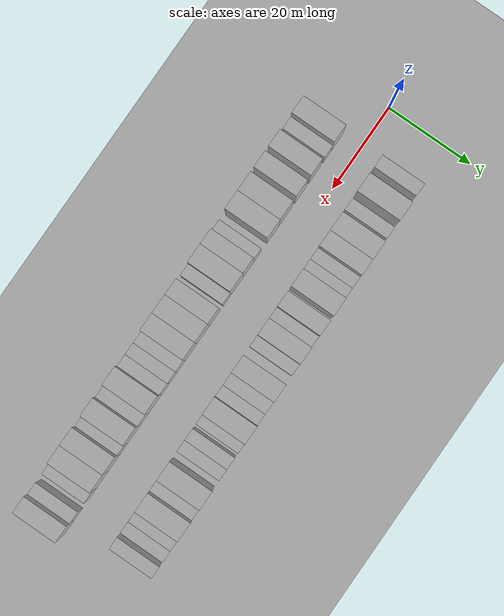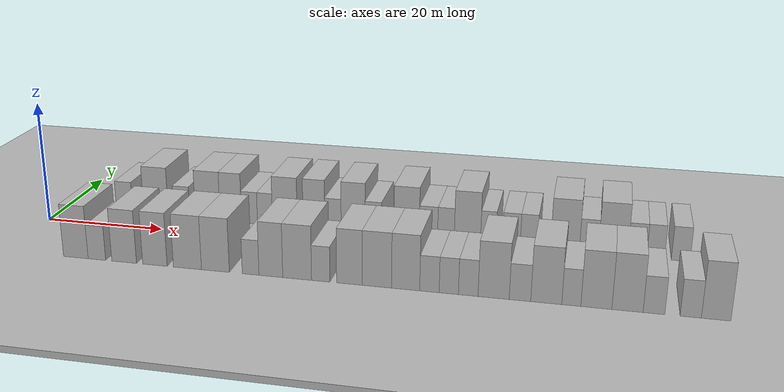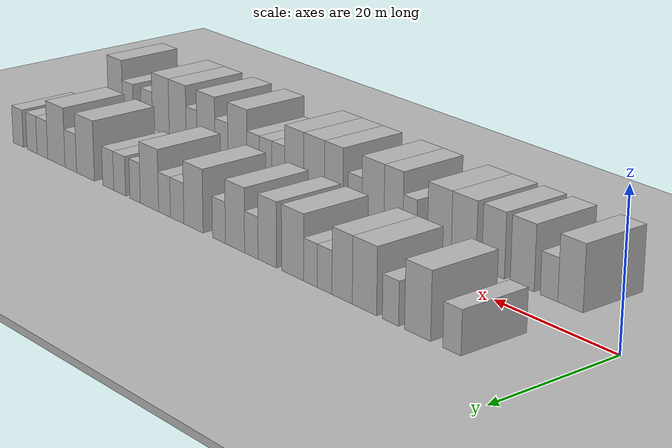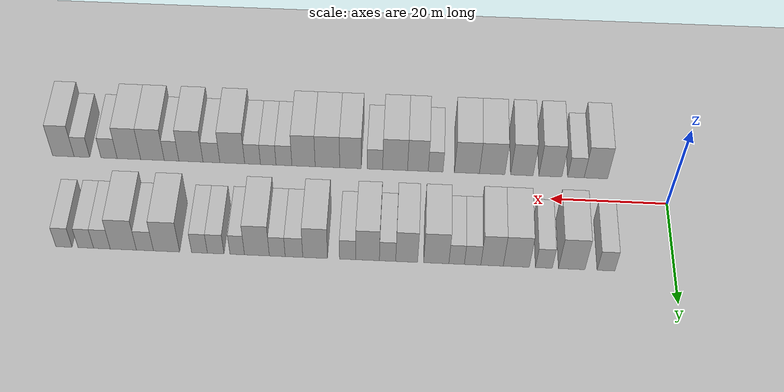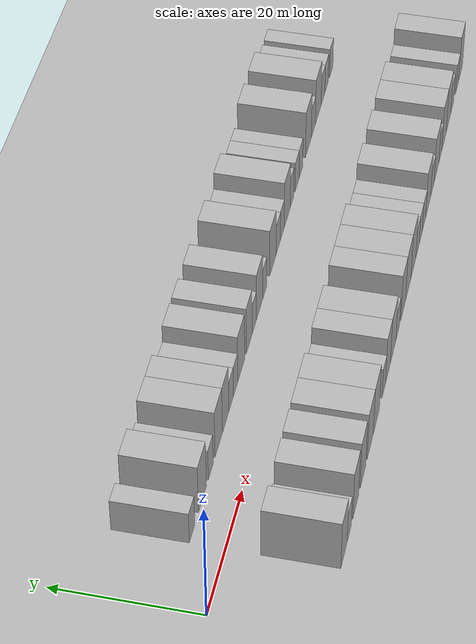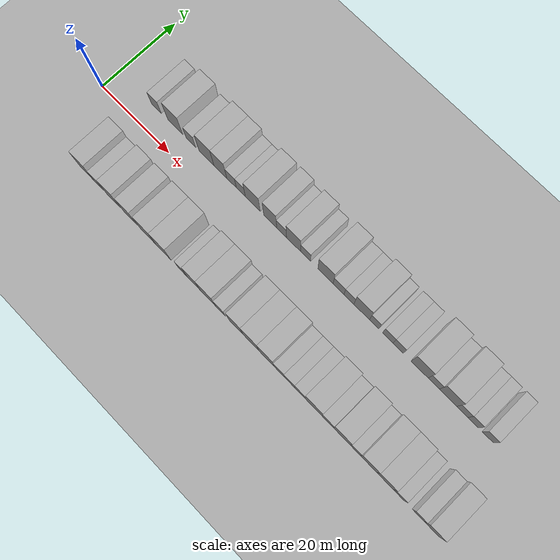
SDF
<sdf version="1.6">
 <world name="default">
  <include><name>ground_plane_1</name><uri>model://HANNAS_ground_plane</uri></include>
  <include>
   <name>ground_plane_2</name>
   <uri>model://HANNAS_ground_plane</uri>
   <pose>100 0 0  0 0 0</pose>
  </include>
  <model name="building_1">
   <static>1</static>
   <pose>11.4663 9.5000 0 0.000000 0.000000 1.570796</pose>
   <link name="link">
    <pose>0 0 3.00 0 0 0</pose>
    <collision name="collision"><geometry><box><size>10.0000 2.9326 6.0000</size></box></geometry></collision>
    <visual name="visual">
     <cast_shadows>0</cast_shadows>
     <geometry><box><size>10.0000 2.9326 6.0000</size></box></geometry>
     <material>
      <script>
       <uri>model://HANNAS_wall/materials/scripts</uri>
       <uri>model://HANNAS_wall/materials/textures</uri>
       <name>vrc/HANNAS_wall</name>
      </script>
     </material>
    </visual>
   </link>
  </model>
  <model name="building_2">
   <static>1</static>
   <pose>17.1195 9.5000 0 0.000000 0.000000 1.570796</pose>
   <link name="link">
    <pose>0 0 4.50 0 0 0</pose>
    <collision name="collision"><geometry><box><size>10.0000 4.3737 9.0000</size></box></geometry></collision>
    <visual name="visual">
     <cast_shadows>0</cast_shadows>
     <geometry><box><size>10.0000 4.3737 9.0000</size></box></geometry>
     <material>
      <script>
       <uri>model://HANNAS_wall/materials/scripts</uri>
       <uri>model://HANNAS_wall/materials/textures</uri>
       <name>vrc/HANNAS_wall</name>
      </script>
     </material>
    </visual>
   </link>
  </model>
  <model name="building_3">
   <static>1</static>
   <pose>21.7086 9.5000 0 0.000000 0.000000 1.570796</pose>
   <link name="link">
    <pose>0 0 3.00 0 0 0</pose>
    <collision name="collision"><geometry><box><size>10.0000 2.8046 6.0000</size></box></geometry></collision>
    <visual name="visual">
     <cast_shadows>0</cast_shadows>
     <geometry><box><size>10.0000 2.8046 6.0000</size></box></geometry>
     <material>
      <script>
       <uri>model://HANNAS_wall/materials/scripts</uri>
       <uri>model://HANNAS_wall/materials/textures</uri>
       <name>vrc/HANNAS_wall</name>
      </script>
     </material>
    </visual>
   </link>
  </model>
  <model name="building_4">
   <static>1</static>
   <pose>26.2625 9.5000 0 0.000000 0.000000 1.570796</pose>
   <link name="link">
    <pose>0 0 4.50 0 0 0</pose>
    <collision name="collision"><geometry><box><size>10.0000 4.3031 9.0000</size></box></geometry></collision>
    <visual name="visual">
     <cast_shadows>0</cast_shadows>
     <geometry><box><size>10.0000 4.3031 9.0000</size></box></geometry>
     <material>
      <script>
       <uri>model://HANNAS_wall/materials/scripts</uri>
       <uri>model://HANNAS_wall/materials/textures</uri>
       <name>vrc/HANNAS_wall</name>
      </script>
     </material>
    </visual>
   </link>
  </model>
  <model name="building_5">
   <static>1</static>
   <pose>30.2698 9.5000 0 0.000000 0.000000 1.570796</pose>
   <link name="link">
    <pose>0 0 4.50 0 0 0</pose>
    <collision name="collision"><geometry><box><size>10.0000 3.7114 9.0000</size></box></geometry></collision>
    <visual name="visual">
     <cast_shadows>0</cast_shadows>
     <geometry><box><size>10.0000 3.7114 9.0000</size></box></geometry>
     <material>
      <script>
       <uri>model://HANNAS_wall/materials/scripts</uri>
       <uri>model://HANNAS_wall/materials/textures</uri>
       <name>vrc/HANNAS_wall</name>
      </script>
     </material>
    </visual>
   </link>
  </model>
  <model name="building_6">
   <static>1</static>
   <pose>33.4871 9.5000 0 0.000000 0.000000 1.570796</pose>
   <link name="link">
    <pose>0 0 3.00 0 0 0</pose>
    <collision name="collision"><geometry><box><size>10.0000 2.7232 6.0000</size></box></geometry></collision>
    <visual name="visual">
     <cast_shadows>0</cast_shadows>
     <geometry><box><size>10.0000 2.7232 6.0000</size></box></geometry>
     <material>
      <script>
       <uri>model://HANNAS_wall/materials/scripts</uri>
       <uri>model://HANNAS_wall/materials/textures</uri>
       <name>vrc/HANNAS_wall</name>
      </script>
     </material>
    </visual>
   </link>
  </model>
  <model name="building_7">
   <static>1</static>
   <pose>36.1330 9.5000 0 0.000000 0.000000 1.570796</pose>
   <link name="link">
    <pose>0 0 3.00 0 0 0</pose>
    <collision name="collision"><geometry><box><size>10.0000 2.5685 6.0000</size></box></geometry></collision>
    <visual name="visual">
     <cast_shadows>0</cast_shadows>
     <geometry><box><size>10.0000 2.5685 6.0000</size></box></geometry>
     <material>
      <script>
       <uri>model://HANNAS_wall/materials/scripts</uri>
       <uri>model://HANNAS_wall/materials/textures</uri>
       <name>vrc/HANNAS_wall</name>
      </script>
     </material>
    </visual>
   </link>
  </model>
  <model name="building_8">
   <static>1</static>
   <pose>39.5141 9.5000 0 0.000000 0.000000 1.570796</pose>
   <link name="link">
    <pose>0 0 4.50 0 0 0</pose>
    <collision name="collision"><geometry><box><size>10.0000 4.1938 9.0000</size></box></geometry></collision>
    <visual name="visual">
     <cast_shadows>0</cast_shadows>
     <geometry><box><size>10.0000 4.1938 9.0000</size></box></geometry>
     <material>
      <script>
       <uri>model://HANNAS_wall/materials/scripts</uri>
       <uri>model://HANNAS_wall/materials/textures</uri>
       <name>vrc/HANNAS_wall</name>
      </script>
     </material>
    </visual>
   </link>
  </model>
  <model name="building_9">
   <static>1</static>
   <pose>44.4281 9.5000 0 0.000000 0.000000 1.570796</pose>
   <link name="link">
    <pose>0 0 4.50 0 0 0</pose>
    <collision name="collision"><geometry><box><size>10.0000 3.6342 9.0000</size></box></geometry></collision>
    <visual name="visual">
     <cast_shadows>0</cast_shadows>
     <geometry><box><size>10.0000 3.6342 9.0000</size></box></geometry>
     <material>
      <script>
       <uri>model://HANNAS_wall/materials/scripts</uri>
       <uri>model://HANNAS_wall/materials/textures</uri>
       <name>vrc/HANNAS_wall</name>
      </script>
     </material>
    </visual>
   </link>
  </model>
  <model name="building_10">
   <static>1</static>
   <pose>47.5984 9.5000 0 0.000000 0.000000 1.570796</pose>
   <link name="link">
    <pose>0 0 3.00 0 0 0</pose>
    <collision name="collision"><geometry><box><size>10.0000 2.7064 6.0000</size></box></geometry></collision>
    <visual name="visual">
     <cast_shadows>0</cast_shadows>
     <geometry><box><size>10.0000 2.7064 6.0000</size></box></geometry>
     <material>
      <script>
       <uri>model://HANNAS_wall/materials/scripts</uri>
       <uri>model://HANNAS_wall/materials/textures</uri>
       <name>vrc/HANNAS_wall</name>
      </script>
     </material>
    </visual>
   </link>
  </model>
  <model name="building_11">
   <static>1</static>
   <pose>50.9195 9.5000 0 0.000000 0.000000 1.570796</pose>
   <link name="link">
    <pose>0 0 4.50 0 0 0</pose>
    <collision name="collision"><geometry><box><size>10.0000 3.9358 9.0000</size></box></geometry></collision>
    <visual name="visual">
     <cast_shadows>0</cast_shadows>
     <geometry><box><size>10.0000 3.9358 9.0000</size></box></geometry>
     <material>
      <script>
       <uri>model://HANNAS_wall/materials/scripts</uri>
       <uri>model://HANNAS_wall/materials/textures</uri>
       <name>vrc/HANNAS_wall</name>
      </script>
     </material>
    </visual>
   </link>
  </model>
  <model name="building_12">
   <static>1</static>
   <pose>54.2361 9.5000 0 0.000000 0.000000 1.570796</pose>
   <link name="link">
    <pose>0 0 3.00 0 0 0</pose>
    <collision name="collision"><geometry><box><size>10.0000 2.6974 6.0000</size></box></geometry></collision>
    <visual name="visual">
     <cast_shadows>0</cast_shadows>
     <geometry><box><size>10.0000 2.6974 6.0000</size></box></geometry>
     <material>
      <script>
       <uri>model://HANNAS_wall/materials/scripts</uri>
       <uri>model://HANNAS_wall/materials/textures</uri>
       <name>vrc/HANNAS_wall</name>
      </script>
     </material>
    </visual>
   </link>
  </model>
  <model name="building_13">
   <static>1</static>
   <pose>59.6473 9.5000 0 0.000000 0.000000 1.570796</pose>
   <link name="link">
    <pose>0 0 4.50 0 0 0</pose>
    <collision name="collision"><geometry><box><size>10.0000 4.1249 9.0000</size></box></geometry></collision>
    <visual name="visual">
     <cast_shadows>0</cast_shadows>
     <geometry><box><size>10.0000 4.1249 9.0000</size></box></geometry>
     <material>
      <script>
       <uri>model://HANNAS_wall/materials/scripts</uri>
       <uri>model://HANNAS_wall/materials/textures</uri>
       <name>vrc/HANNAS_wall</name>
      </script>
     </material>
    </visual>
   </link>
  </model>
  <model name="building_14">
   <static>1</static>
   <pose>63.1792 9.5000 0 0.000000 0.000000 1.570796</pose>
   <link name="link">
    <pose>0 0 3.00 0 0 0</pose>
    <collision name="collision"><geometry><box><size>10.0000 2.9390 6.0000</size></box></geometry></collision>
    <visual name="visual">
     <cast_shadows>0</cast_shadows>
     <geometry><box><size>10.0000 2.9390 6.0000</size></box></geometry>
     <material>
      <script>
       <uri>model://HANNAS_wall/materials/scripts</uri>
       <uri>model://HANNAS_wall/materials/textures</uri>
       <name>vrc/HANNAS_wall</name>
      </script>
     </material>
    </visual>
   </link>
  </model>
  <model name="building_15">
   <static>1</static>
   <pose>65.9733 9.5000 0 0.000000 0.000000 1.570796</pose>
   <link name="link">
    <pose>0 0 3.00 0 0 0</pose>
    <collision name="collision"><geometry><box><size>10.0000 2.6491 6.0000</size></box></geometry></collision>
    <visual name="visual">
     <cast_shadows>0</cast_shadows>
     <geometry><box><size>10.0000 2.6491 6.0000</size></box></geometry>
     <material>
      <script>
       <uri>model://HANNAS_wall/materials/scripts</uri>
       <uri>model://HANNAS_wall/materials/textures</uri>
       <name>vrc/HANNAS_wall</name>
      </script>
     </material>
    </visual>
   </link>
  </model>
  <model name="building_16">
   <static>1</static>
   <pose>69.3737 9.5000 0 0.000000 0.000000 1.570796</pose>
   <link name="link">
    <pose>0 0 4.50 0 0 0</pose>
    <collision name="collision"><geometry><box><size>10.0000 4.1518 9.0000</size></box></geometry></collision>
    <visual name="visual">
     <cast_shadows>0</cast_shadows>
     <geometry><box><size>10.0000 4.1518 9.0000</size></box></geometry>
     <material>
      <script>
       <uri>model://HANNAS_wall/materials/scripts</uri>
       <uri>model://HANNAS_wall/materials/textures</uri>
       <name>vrc/HANNAS_wall</name>
      </script>
     </material>
    </visual>
   </link>
  </model>
  <model name="building_17">
   <static>1</static>
   <pose>72.6612 9.5000 0 0.000000 0.000000 1.570796</pose>
   <link name="link">
    <pose>0 0 3.00 0 0 0</pose>
    <collision name="collision"><geometry><box><size>10.0000 2.4232 6.0000</size></box></geometry></collision>
    <visual name="visual">
     <cast_shadows>0</cast_shadows>
     <geometry><box><size>10.0000 2.4232 6.0000</size></box></geometry>
     <material>
      <script>
       <uri>model://HANNAS_wall/materials/scripts</uri>
       <uri>model://HANNAS_wall/materials/textures</uri>
       <name>vrc/HANNAS_wall</name>
      </script>
     </material>
    </visual>
   </link>
  </model>
  <model name="building_18">
   <static>1</static>
   <pose>76.2624 9.5000 0 0.000000 0.000000 1.570796</pose>
   <link name="link">
    <pose>0 0 3.00 0 0 0</pose>
    <collision name="collision"><geometry><box><size>10.0000 2.7791 6.0000</size></box></geometry></collision>
    <visual name="visual">
     <cast_shadows>0</cast_shadows>
     <geometry><box><size>10.0000 2.7791 6.0000</size></box></geometry>
     <material>
      <script>
       <uri>model://HANNAS_wall/materials/scripts</uri>
       <uri>model://HANNAS_wall/materials/textures</uri>
       <name>vrc/HANNAS_wall</name>
      </script>
     </material>
    </visual>
   </link>
  </model>
  <model name="building_19">
   <static>1</static>
   <pose>78.9810 9.5000 0 0.000000 0.000000 1.570796</pose>
   <link name="link">
    <pose>0 0 3.00 0 0 0</pose>
    <collision name="collision"><geometry><box><size>10.0000 2.6581 6.0000</size></box></geometry></collision>
    <visual name="visual">
     <cast_shadows>0</cast_shadows>
     <geometry><box><size>10.0000 2.6581 6.0000</size></box></geometry>
     <material>
      <script>
       <uri>model://HANNAS_wall/materials/scripts</uri>
       <uri>model://HANNAS_wall/materials/textures</uri>
       <name>vrc/HANNAS_wall</name>
      </script>
     </material>
    </visual>
   </link>
  </model>
  <model name="building_20">
   <static>1</static>
   <pose>84.5085 9.5000 0 0.000000 0.000000 1.570796</pose>
   <link name="link">
    <pose>0 0 4.50 0 0 0</pose>
    <collision name="collision"><geometry><box><size>10.0000 4.3968 9.0000</size></box></geometry></collision>
    <visual name="visual">
     <cast_shadows>0</cast_shadows>
     <geometry><box><size>10.0000 4.3968 9.0000</size></box></geometry>
     <material>
      <script>
       <uri>model://HANNAS_wall/materials/scripts</uri>
       <uri>model://HANNAS_wall/materials/textures</uri>
       <name>vrc/HANNAS_wall</name>
      </script>
     </material>
    </visual>
   </link>
  </model>
  <model name="building_21">
   <static>1</static>
   <pose>88.1428 9.5000 0 0.000000 0.000000 1.570796</pose>
   <link name="link">
    <pose>0 0 3.00 0 0 0</pose>
    <collision name="collision"><geometry><box><size>10.0000 2.8719 6.0000</size></box></geometry></collision>
    <visual name="visual">
     <cast_shadows>0</cast_shadows>
     <geometry><box><size>10.0000 2.8719 6.0000</size></box></geometry>
     <material>
      <script>
       <uri>model://HANNAS_wall/materials/scripts</uri>
       <uri>model://HANNAS_wall/materials/textures</uri>
       <name>vrc/HANNAS_wall</name>
      </script>
     </material>
    </visual>
   </link>
  </model>
  <model name="building_22">
   <static>1</static>
   <pose>91.7803 9.5000 0 0.000000 0.000000 1.570796</pose>
   <link name="link">
    <pose>0 0 4.50 0 0 0</pose>
    <collision name="collision"><geometry><box><size>10.0000 4.4031 9.0000</size></box></geometry></collision>
    <visual name="visual">
     <cast_shadows>0</cast_shadows>
     <geometry><box><size>10.0000 4.4031 9.0000</size></box></geometry>
     <material>
      <script>
       <uri>model://HANNAS_wall/materials/scripts</uri>
       <uri>model://HANNAS_wall/materials/textures</uri>
       <name>vrc/HANNAS_wall</name>
      </script>
     </material>
    </visual>
   </link>
  </model>
  <model name="building_23">
   <static>1</static>
   <pose>95.3848 9.5000 0 0.000000 0.000000 1.570796</pose>
   <link name="link">
    <pose>0 0 3.00 0 0 0</pose>
    <collision name="collision"><geometry><box><size>10.0000 2.8060 6.0000</size></box></geometry></collision>
    <visual name="visual">
     <cast_shadows>0</cast_shadows>
     <geometry><box><size>10.0000 2.8060 6.0000</size></box></geometry>
     <material>
      <script>
       <uri>model://HANNAS_wall/materials/scripts</uri>
       <uri>model://HANNAS_wall/materials/textures</uri>
       <name>vrc/HANNAS_wall</name>
      </script>
     </material>
    </visual>
   </link>
  </model>
  <model name="building_24">
   <static>1</static>
   <pose>98.0999 9.5000 0 0.000000 0.000000 1.570796</pose>
   <link name="link">
    <pose>0 0 3.00 0 0 0</pose>
    <collision name="collision"><geometry><box><size>10.0000 2.6241 6.0000</size></box></geometry></collision>
    <visual name="visual">
     <cast_shadows>0</cast_shadows>
     <geometry><box><size>10.0000 2.6241 6.0000</size></box></geometry>
     <material>
      <script>
       <uri>model://HANNAS_wall/materials/scripts</uri>
       <uri>model://HANNAS_wall/materials/textures</uri>
       <name>vrc/HANNAS_wall</name>
      </script>
     </material>
    </visual>
   </link>
  </model>
  <model name="building_25">
   <static>1</static>
   <pose>101.7796 9.5000 0 0.000000 0.000000 1.570796</pose>
   <link name="link">
    <pose>0 0 3.00 0 0 0</pose>
    <collision name="collision"><geometry><box><size>10.0000 2.7354 6.0000</size></box></geometry></collision>
    <visual name="visual">
     <cast_shadows>0</cast_shadows>
     <geometry><box><size>10.0000 2.7354 6.0000</size></box></geometry>
     <material>
      <script>
       <uri>model://HANNAS_wall/materials/scripts</uri>
       <uri>model://HANNAS_wall/materials/textures</uri>
       <name>vrc/HANNAS_wall</name>
      </script>
     </material>
    </visual>
   </link>
  </model>
  <model name="building_52">
   <static>1</static>
   <pose>12.0296 -9.5000 0 0.000000 0.000000 1.570796</pose>
   <link name="link">
    <pose>0 0 4.50 0 0 0</pose>
    <collision name="collision"><geometry><box><size>10.0000 4.0592 9.0000</size></box></geometry></collision>
    <visual name="visual">
     <cast_shadows>0</cast_shadows>
     <geometry><box><size>10.0000 4.0592 9.0000</size></box></geometry>
     <material>
      <script>
       <uri>model://HANNAS_wall/materials/scripts</uri>
       <uri>model://HANNAS_wall/materials/textures</uri>
       <name>vrc/HANNAS_wall</name>
      </script>
     </material>
    </visual>
   </link>
  </model>
  <model name="building_53">
   <static>1</static>
   <pose>15.4925 -9.5000 0 0.000000 0.000000 1.570796</pose>
   <link name="link">
    <pose>0 0 3.00 0 0 0</pose>
    <collision name="collision"><geometry><box><size>10.0000 2.8667 6.0000</size></box></geometry></collision>
    <visual name="visual">
     <cast_shadows>0</cast_shadows>
     <geometry><box><size>10.0000 2.8667 6.0000</size></box></geometry>
     <material>
      <script>
       <uri>model://HANNAS_wall/materials/scripts</uri>
       <uri>model://HANNAS_wall/materials/textures</uri>
       <name>vrc/HANNAS_wall</name>
      </script>
     </material>
    </visual>
   </link>
  </model>
  <model name="building_54">
   <static>1</static>
   <pose>19.9274 -9.5000 0 0.000000 0.000000 1.570796</pose>
   <link name="link">
    <pose>0 0 4.50 0 0 0</pose>
    <collision name="collision"><geometry><box><size>10.0000 4.0031 9.0000</size></box></geometry></collision>
    <visual name="visual">
     <cast_shadows>0</cast_shadows>
     <geometry><box><size>10.0000 4.0031 9.0000</size></box></geometry>
     <material>
      <script>
       <uri>model://HANNAS_wall/materials/scripts</uri>
       <uri>model://HANNAS_wall/materials/textures</uri>
       <name>vrc/HANNAS_wall</name>
      </script>
     </material>
    </visual>
   </link>
  </model>
  <model name="building_55">
   <static>1</static>
   <pose>24.8830 -9.5000 0 0.000000 0.000000 1.570796</pose>
   <link name="link">
    <pose>0 0 4.50 0 0 0</pose>
    <collision name="collision"><geometry><box><size>10.0000 3.9080 9.0000</size></box></geometry></collision>
    <visual name="visual">
     <cast_shadows>0</cast_shadows>
     <geometry><box><size>10.0000 3.9080 9.0000</size></box></geometry>
     <material>
      <script>
       <uri>model://HANNAS_wall/materials/scripts</uri>
       <uri>model://HANNAS_wall/materials/textures</uri>
       <name>vrc/HANNAS_wall</name>
      </script>
     </material>
    </visual>
   </link>
  </model>
  <model name="building_56">
   <static>1</static>
   <pose>30.0492 -9.5000 0 0.000000 0.000000 1.570796</pose>
   <link name="link">
    <pose>0 0 4.50 0 0 0</pose>
    <collision name="collision"><geometry><box><size>10.0000 4.4245 9.0000</size></box></geometry></collision>
    <visual name="visual">
     <cast_shadows>0</cast_shadows>
     <geometry><box><size>10.0000 4.4245 9.0000</size></box></geometry>
     <material>
      <script>
       <uri>model://HANNAS_wall/materials/scripts</uri>
       <uri>model://HANNAS_wall/materials/textures</uri>
       <name>vrc/HANNAS_wall</name>
      </script>
     </material>
    </visual>
   </link>
  </model>
  <model name="building_57">
   <static>1</static>
   <pose>34.4392 -9.5000 0 0.000000 0.000000 1.570796</pose>
   <link name="link">
    <pose>0 0 4.50 0 0 0</pose>
    <collision name="collision"><geometry><box><size>10.0000 4.3555 9.0000</size></box></geometry></collision>
    <visual name="visual">
     <cast_shadows>0</cast_shadows>
     <geometry><box><size>10.0000 4.3555 9.0000</size></box></geometry>
     <material>
      <script>
       <uri>model://HANNAS_wall/materials/scripts</uri>
       <uri>model://HANNAS_wall/materials/textures</uri>
       <name>vrc/HANNAS_wall</name>
      </script>
     </material>
    </visual>
   </link>
  </model>
  <model name="building_58">
   <static>1</static>
   <pose>39.9053 -9.5000 0 0.000000 0.000000 1.570796</pose>
   <link name="link">
    <pose>0 0 3.00 0 0 0</pose>
    <collision name="collision"><geometry><box><size>10.0000 2.5767 6.0000</size></box></geometry></collision>
    <visual name="visual">
     <cast_shadows>0</cast_shadows>
     <geometry><box><size>10.0000 2.5767 6.0000</size></box></geometry>
     <material>
      <script>
       <uri>model://HANNAS_wall/materials/scripts</uri>
       <uri>model://HANNAS_wall/materials/textures</uri>
       <name>vrc/HANNAS_wall</name>
      </script>
     </material>
    </visual>
   </link>
  </model>
  <model name="building_59">
   <static>1</static>
   <pose>43.0047 -9.5000 0 0.000000 0.000000 1.570796</pose>
   <link name="link">
    <pose>0 0 4.50 0 0 0</pose>
    <collision name="collision"><geometry><box><size>10.0000 3.6222 9.0000</size></box></geometry></collision>
    <visual name="visual">
     <cast_shadows>0</cast_shadows>
     <geometry><box><size>10.0000 3.6222 9.0000</size></box></geometry>
     <material>
      <script>
       <uri>model://HANNAS_wall/materials/scripts</uri>
       <uri>model://HANNAS_wall/materials/textures</uri>
       <name>vrc/HANNAS_wall</name>
      </script>
     </material>
    </visual>
   </link>
  </model>
  <model name="building_60">
   <static>1</static>
   <pose>46.9887 -9.5000 0 0.000000 0.000000 1.570796</pose>
   <link name="link">
    <pose>0 0 4.50 0 0 0</pose>
    <collision name="collision"><geometry><box><size>10.0000 4.3457 9.0000</size></box></geometry></collision>
    <visual name="visual">
     <cast_shadows>0</cast_shadows>
     <geometry><box><size>10.0000 4.3457 9.0000</size></box></geometry>
     <material>
      <script>
       <uri>model://HANNAS_wall/materials/scripts</uri>
       <uri>model://HANNAS_wall/materials/textures</uri>
       <name>vrc/HANNAS_wall</name>
      </script>
     </material>
    </visual>
   </link>
  </model>
  <model name="building_61">
   <static>1</static>
   <pose>50.5330 -9.5000 0 0.000000 0.000000 1.570796</pose>
   <link name="link">
    <pose>0 0 3.00 0 0 0</pose>
    <collision name="collision"><geometry><box><size>10.0000 2.7430 6.0000</size></box></geometry></collision>
    <visual name="visual">
     <cast_shadows>0</cast_shadows>
     <geometry><box><size>10.0000 2.7430 6.0000</size></box></geometry>
     <material>
      <script>
       <uri>model://HANNAS_wall/materials/scripts</uri>
       <uri>model://HANNAS_wall/materials/textures</uri>
       <name>vrc/HANNAS_wall</name>
      </script>
     </material>
    </visual>
   </link>
  </model>
  <model name="building_62">
   <static>1</static>
   <pose>54.7955 -9.5000 0 0.000000 0.000000 1.570796</pose>
   <link name="link">
    <pose>0 0 4.50 0 0 0</pose>
    <collision name="collision"><geometry><box><size>10.0000 3.7818 9.0000</size></box></geometry></collision>
    <visual name="visual">
     <cast_shadows>0</cast_shadows>
     <geometry><box><size>10.0000 3.7818 9.0000</size></box></geometry>
     <material>
      <script>
       <uri>model://HANNAS_wall/materials/scripts</uri>
       <uri>model://HANNAS_wall/materials/textures</uri>
       <name>vrc/HANNAS_wall</name>
      </script>
     </material>
    </visual>
   </link>
  </model>
  <model name="building_63">
   <static>1</static>
   <pose>58.8377 -9.5000 0 0.000000 0.000000 1.570796</pose>
   <link name="link">
    <pose>0 0 4.50 0 0 0</pose>
    <collision name="collision"><geometry><box><size>10.0000 4.3026 9.0000</size></box></geometry></collision>
    <visual name="visual">
     <cast_shadows>0</cast_shadows>
     <geometry><box><size>10.0000 4.3026 9.0000</size></box></geometry>
     <material>
      <script>
       <uri>model://HANNAS_wall/materials/scripts</uri>
       <uri>model://HANNAS_wall/materials/textures</uri>
       <name>vrc/HANNAS_wall</name>
      </script>
     </material>
    </visual>
   </link>
  </model>
  <model name="building_64">
   <static>1</static>
   <pose>63.0307 -9.5000 0 0.000000 0.000000 1.570796</pose>
   <link name="link">
    <pose>0 0 4.50 0 0 0</pose>
    <collision name="collision"><geometry><box><size>10.0000 4.0835 9.0000</size></box></geometry></collision>
    <visual name="visual">
     <cast_shadows>0</cast_shadows>
     <geometry><box><size>10.0000 4.0835 9.0000</size></box></geometry>
     <material>
      <script>
       <uri>model://HANNAS_wall/materials/scripts</uri>
       <uri>model://HANNAS_wall/materials/textures</uri>
       <name>vrc/HANNAS_wall</name>
      </script>
     </material>
    </visual>
   </link>
  </model>
  <model name="building_65">
   <static>1</static>
   <pose>66.4683 -9.5000 0 0.000000 0.000000 1.570796</pose>
   <link name="link">
    <pose>0 0 3.00 0 0 0</pose>
    <collision name="collision"><geometry><box><size>10.0000 2.7917 6.0000</size></box></geometry></collision>
    <visual name="visual">
     <cast_shadows>0</cast_shadows>
     <geometry><box><size>10.0000 2.7917 6.0000</size></box></geometry>
     <material>
      <script>
       <uri>model://HANNAS_wall/materials/scripts</uri>
       <uri>model://HANNAS_wall/materials/textures</uri>
       <name>vrc/HANNAS_wall</name>
      </script>
     </material>
    </visual>
   </link>
  </model>
  <model name="building_66">
   <static>1</static>
   <pose>69.2364 -9.5000 0 0.000000 0.000000 1.570796</pose>
   <link name="link">
    <pose>0 0 3.00 0 0 0</pose>
    <collision name="collision"><geometry><box><size>10.0000 2.7447 6.0000</size></box></geometry></collision>
    <visual name="visual">
     <cast_shadows>0</cast_shadows>
     <geometry><box><size>10.0000 2.7447 6.0000</size></box></geometry>
     <material>
      <script>
       <uri>model://HANNAS_wall/materials/scripts</uri>
       <uri>model://HANNAS_wall/materials/textures</uri>
       <name>vrc/HANNAS_wall</name>
      </script>
     </material>
    </visual>
   </link>
  </model>
  <model name="building_67">
   <static>1</static>
   <pose>71.9947 -9.5000 0 0.000000 0.000000 1.570796</pose>
   <link name="link">
    <pose>0 0 3.00 0 0 0</pose>
    <collision name="collision"><geometry><box><size>10.0000 2.7718 6.0000</size></box></geometry></collision>
    <visual name="visual">
     <cast_shadows>0</cast_shadows>
     <geometry><box><size>10.0000 2.7718 6.0000</size></box></geometry>
     <material>
      <script>
       <uri>model://HANNAS_wall/materials/scripts</uri>
       <uri>model://HANNAS_wall/materials/textures</uri>
       <name>vrc/HANNAS_wall</name>
      </script>
     </material>
    </visual>
   </link>
  </model>
  <model name="building_68">
   <static>1</static>
   <pose>75.5633 -9.5000 0 0.000000 0.000000 1.570796</pose>
   <link name="link">
    <pose>0 0 4.50 0 0 0</pose>
    <collision name="collision"><geometry><box><size>10.0000 4.3655 9.0000</size></box></geometry></collision>
    <visual name="visual">
     <cast_shadows>0</cast_shadows>
     <geometry><box><size>10.0000 4.3655 9.0000</size></box></geometry>
     <material>
      <script>
       <uri>model://HANNAS_wall/materials/scripts</uri>
       <uri>model://HANNAS_wall/materials/textures</uri>
       <name>vrc/HANNAS_wall</name>
      </script>
     </material>
    </visual>
   </link>
  </model>
  <model name="building_69">
   <static>1</static>
   <pose>79.2370 -9.5000 0 0.000000 0.000000 1.570796</pose>
   <link name="link">
    <pose>0 0 3.00 0 0 0</pose>
    <collision name="collision"><geometry><box><size>10.0000 2.9818 6.0000</size></box></geometry></collision>
    <visual name="visual">
     <cast_shadows>0</cast_shadows>
     <geometry><box><size>10.0000 2.9818 6.0000</size></box></geometry>
     <material>
      <script>
       <uri>model://HANNAS_wall/materials/scripts</uri>
       <uri>model://HANNAS_wall/materials/textures</uri>
       <name>vrc/HANNAS_wall</name>
      </script>
     </material>
    </visual>
   </link>
  </model>
  <model name="building_70">
   <static>1</static>
   <pose>82.8568 -9.5000 0 0.000000 0.000000 1.570796</pose>
   <link name="link">
    <pose>0 0 4.50 0 0 0</pose>
    <collision name="collision"><geometry><box><size>10.0000 4.2579 9.0000</size></box></geometry></collision>
    <visual name="visual">
     <cast_shadows>0</cast_shadows>
     <geometry><box><size>10.0000 4.2579 9.0000</size></box></geometry>
     <material>
      <script>
       <uri>model://HANNAS_wall/materials/scripts</uri>
       <uri>model://HANNAS_wall/materials/textures</uri>
       <name>vrc/HANNAS_wall</name>
      </script>
     </material>
    </visual>
   </link>
  </model>
  <model name="building_71">
   <static>1</static>
   <pose>86.2819 -9.5000 0 0.000000 0.000000 1.570796</pose>
   <link name="link">
    <pose>0 0 3.00 0 0 0</pose>
    <collision name="collision"><geometry><box><size>10.0000 2.5923 6.0000</size></box></geometry></collision>
    <visual name="visual">
     <cast_shadows>0</cast_shadows>
     <geometry><box><size>10.0000 2.5923 6.0000</size></box></geometry>
     <material>
      <script>
       <uri>model://HANNAS_wall/materials/scripts</uri>
       <uri>model://HANNAS_wall/materials/textures</uri>
       <name>vrc/HANNAS_wall</name>
      </script>
     </material>
    </visual>
   </link>
  </model>
  <model name="building_72">
   <static>1</static>
   <pose>89.6646 -9.5000 0 0.000000 0.000000 1.570796</pose>
   <link name="link">
    <pose>0 0 4.50 0 0 0</pose>
    <collision name="collision"><geometry><box><size>10.0000 4.1730 9.0000</size></box></geometry></collision>
    <visual name="visual">
     <cast_shadows>0</cast_shadows>
     <geometry><box><size>10.0000 4.1730 9.0000</size></box></geometry>
     <material>
      <script>
       <uri>model://HANNAS_wall/materials/scripts</uri>
       <uri>model://HANNAS_wall/materials/textures</uri>
       <name>vrc/HANNAS_wall</name>
      </script>
     </material>
    </visual>
   </link>
  </model>
  <model name="building_73">
   <static>1</static>
   <pose>93.8331 -9.5000 0 0.000000 0.000000 1.570796</pose>
   <link name="link">
    <pose>0 0 4.50 0 0 0</pose>
    <collision name="collision"><geometry><box><size>10.0000 4.1638 9.0000</size></box></geometry></collision>
    <visual name="visual">
     <cast_shadows>0</cast_shadows>
     <geometry><box><size>10.0000 4.1638 9.0000</size></box></geometry>
     <material>
      <script>
       <uri>model://HANNAS_wall/materials/scripts</uri>
       <uri>model://HANNAS_wall/materials/textures</uri>
       <name>vrc/HANNAS_wall</name>
      </script>
     </material>
    </visual>
   </link>
  </model>
  <model name="building_74">
   <static>1</static>
   <pose>97.3500 -9.5000 0 0.000000 0.000000 1.570796</pose>
   <link name="link">
    <pose>0 0 3.00 0 0 0</pose>
    <collision name="collision"><geometry><box><size>10.0000 2.8700 6.0000</size></box></geometry></collision>
    <visual name="visual">
     <cast_shadows>0</cast_shadows>
     <geometry><box><size>10.0000 2.8700 6.0000</size></box></geometry>
     <material>
      <script>
       <uri>model://HANNAS_wall/materials/scripts</uri>
       <uri>model://HANNAS_wall/materials/textures</uri>
       <name>vrc/HANNAS_wall</name>
      </script>
     </material>
    </visual>
   </link>
  </model>
  <model name="building_75">
   <static>1</static>
   <pose>102.1669 -9.5000 0 0.000000 0.000000 1.570796</pose>
   <link name="link">
    <pose>0 0 3.00 0 0 0</pose>
    <collision name="collision"><geometry><box><size>10.0000 2.7638 6.0000</size></box></geometry></collision>
    <visual name="visual">
     <cast_shadows>0</cast_shadows>
     <geometry><box><size>10.0000 2.7638 6.0000</size></box></geometry>
     <material>
      <script>
       <uri>model://HANNAS_wall/materials/scripts</uri>
       <uri>model://HANNAS_wall/materials/textures</uri>
       <name>vrc/HANNAS_wall</name>
      </script>
     </material>
    </visual>
   </link>
  </model>
  <model name="building_76">
   <static>1</static>
   <pose>105.4527 -9.5000 0 0.000000 0.000000 1.570796</pose>
   <link name="link">
    <pose>0 0 4.50 0 0 0</pose>
    <collision name="collision"><geometry><box><size>10.0000 3.8077 9.0000</size></box></geometry></collision>
    <visual name="visual">
     <cast_shadows>0</cast_shadows>
     <geometry><box><size>10.0000 3.8077 9.0000</size></box></geometry>
     <material>
      <script>
       <uri>model://HANNAS_wall/materials/scripts</uri>
       <uri>model://HANNAS_wall/materials/textures</uri>
       <name>vrc/HANNAS_wall</name>
      </script>
     </material>
    </visual>
   </link>
  </model>
 </world>
</sdf>
